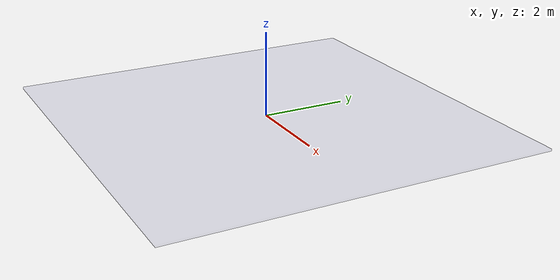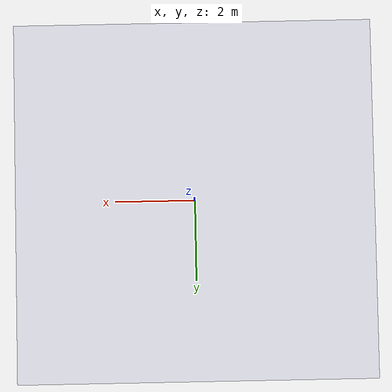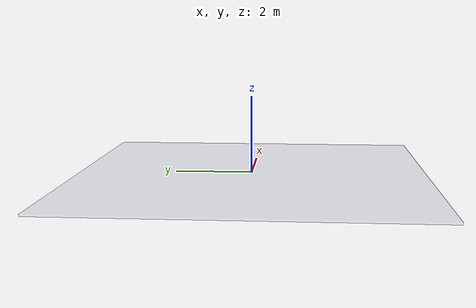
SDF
<?xml version="1.0"?>
<sdf version="1.7">
  <model name="Floor">
    <link name="Floor">
      <pose>0 0 0 0 0 0</pose>
      <inertial>
        <pose>0 0 0 0 0 0</pose>
        <mass>0.1</mass>
        <inertia>
          <ixx>0.000770833</ixx>
          <ixy>0</ixy>
          <ixz>0</ixz>
          <iyy>0.000770833</iyy>
          <iyz>0</iyz>
          <izz>0.0015</izz>
        </inertia>
      </inertial>
      <visual name="visual">
        <pose>0 0 -2.5e-2 0 0 0</pose>
        <geometry>
          <box>
            <size>9.0 9.0 5.0e-2</size>
          </box>
        </geometry>
        <material>
          <diffuse>0.5 0.5 0.7 0.2</diffuse>
        </material>
      </visual>
      <collision name="collision">
        <pose>0 0 -2.5e-2 0 0 0</pose>
        <geometry>
          <box>
            <size>9.0 9.0 5.0e-2</size>
          </box>
        </geometry>
        <drake:proximity_properties>
          <drake:compliant_hydroelastic/>
          <drake:hydroelastic_modulus> 3.0e4 </drake:hydroelastic_modulus>
          <drake:mesh_resolution_hint> 1.0 </drake:mesh_resolution_hint>
          <drake:mu_dynamic> 0.3 </drake:mu_dynamic>
          <drake:mu_static> 0.3 </drake:mu_static>
          <drake:hunt_crossley_dissipation>
            3.0
          </drake:hunt_crossley_dissipation>
        </drake:proximity_properties>
      </collision>
    </link>
  </model>
</sdf>
